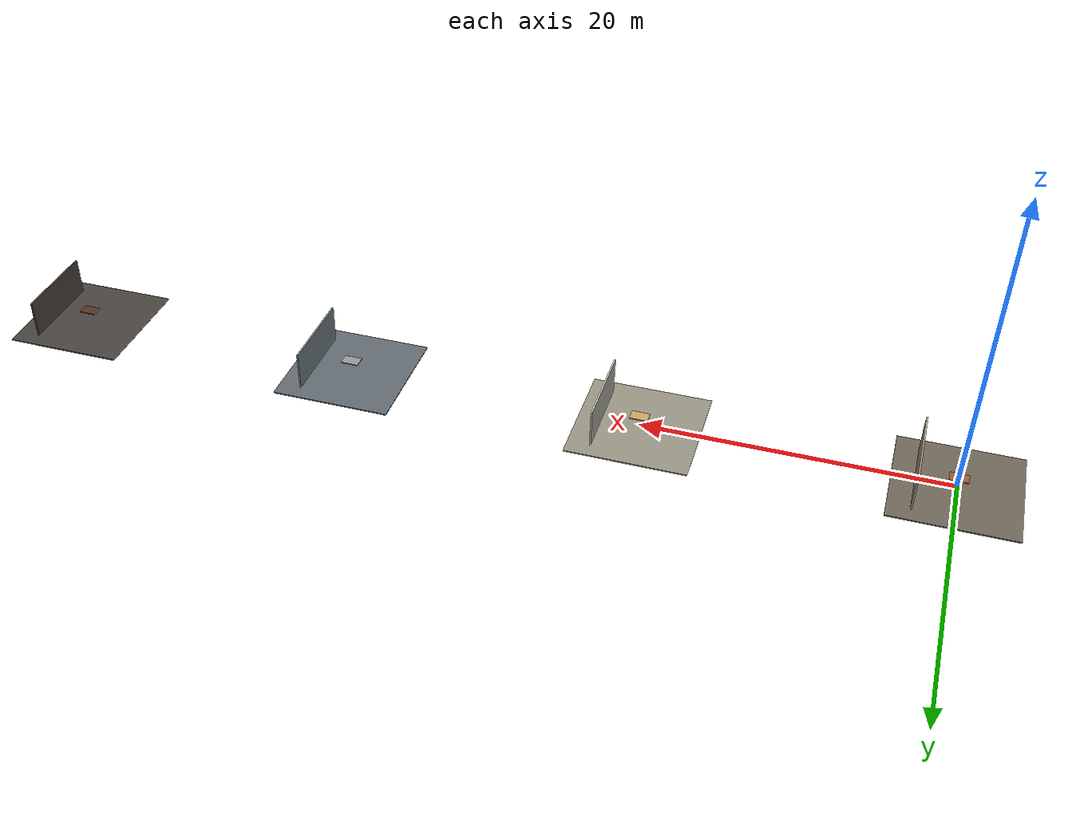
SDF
<sdf version="1.8">
 <world name="formal_objects_dataset_v2">
  <plugin filename="ignition-gazebo-physics-system" name="ignition::gazebo::systems::Physics"/>
  <plugin filename="ignition-gazebo-user-commands-system" name="ignition::gazebo::systems::UserCommands"/>
  <plugin filename="ignition-gazebo-scene-broadcaster-system" name="ignition::gazebo::systems::SceneBroadcaster"/>
  <plugin filename="ignition-gazebo-sensors-system" name="ignition::gazebo::systems::Sensors">
   <render_engine>ogre2</render_engine>
  </plugin>
  <scene>
   <ambient>0.18 0.18 0.18 1</ambient>
   <background>0.55 0.60 0.66 1</background>
   <shadows>true</shadows>
  </scene>
  <light type="directional" name="sun">
   <pose>0 0 8 0 0 0</pose>
   <diffuse>0.9 0.9 0.9 1</diffuse>
   <specular>0.2 0.2 0.2 1</specular>
   <direction>-0.45 0.20 -0.87</direction>
   <intensity>1.0</intensity>
  </light>
  <light type="directional" name="ambient_fill">
   <pose>0 0 8 0 0 0</pose>
   <diffuse>0.7 0.75 0.8 1</diffuse>
   <specular>0.05 0.05 0.05 1</specular>
   <direction>0.25 -0.15 -0.96</direction>
   <intensity>0.18</intensity>
   <cast_shadows>false</cast_shadows>
  </light>
  <model name="background_warm_wood">
   <static>true</static>
   <link name="floor">
    <pose>0 0 -0.04 0 0 0</pose>
    <visual name="visual">
     <geometry><box><size>8 8 0.08</size></box></geometry>
     <material><ambient>0.31 0.29 0.25 1</ambient><diffuse>0.42 0.39 0.34 1</diffuse></material>
    </visual>
   </link>
   <link name="table">
    <pose>0 0 0.72 0 0 0</pose>
    <visual name="visual">
     <geometry><box><size>1.2 0.8 0.06</size></box></geometry>
     <material><ambient>0.40 0.23 0.11 1</ambient><diffuse>0.58 0.35 0.18 1</diffuse></material>
    </visual>
   </link>
   <link name="wall">
    <pose>2.5 0 1.3 0 0 0</pose>
    <visual name="visual">
     <geometry><box><size>0.10 6 2.6</size></box></geometry>
     <material><ambient>0.55 0.49 0.41 1</ambient><diffuse>0.68 0.61 0.52 1</diffuse></material>
    </visual>
   </link>
  </model>
  <model name="background_light_wood">
   <pose>20 0 0 0 0 0</pose>
   <static>true</static>
   <link name="floor">
    <pose>0 0 -0.04 0 0 0</pose>
    <visual name="visual">
     <geometry><box><size>8 8 0.08</size></box></geometry>
     <material><ambient>0.43 0.42 0.38 1</ambient><diffuse>0.58 0.56 0.50 1</diffuse></material>
    </visual>
   </link>
   <link name="table">
    <pose>0 0 0.72 0 0 0</pose>
    <visual name="visual">
     <geometry><box><size>1.2 0.8 0.06</size></box></geometry>
     <material><ambient>0.62 0.48 0.29 1</ambient><diffuse>0.78 0.62 0.39 1</diffuse></material>
    </visual>
   </link>
   <link name="wall">
    <pose>2.5 0 1.3 0 0 0</pose>
    <visual name="visual">
     <geometry><box><size>0.10 6 2.6</size></box></geometry>
     <material><ambient>0.69 0.69 0.64 1</ambient><diffuse>0.82 0.82 0.76 1</diffuse></material>
    </visual>
   </link>
  </model>
  <model name="background_neutral_gray">
   <pose>40 0 0 0 0 0</pose>
   <static>true</static>
   <link name="floor">
    <pose>0 0 -0.04 0 0 0</pose>
    <visual name="visual">
     <geometry><box><size>8 8 0.08</size></box></geometry>
     <material><ambient>0.26 0.29 0.31 1</ambient><diffuse>0.37 0.40 0.43 1</diffuse></material>
    </visual>
   </link>
   <link name="table">
    <pose>0 0 0.72 0 0 0</pose>
    <visual name="visual">
     <geometry><box><size>1.2 0.8 0.06</size></box></geometry>
     <material><ambient>0.42 0.44 0.45 1</ambient><diffuse>0.56 0.58 0.59 1</diffuse></material>
    </visual>
   </link>
   <link name="wall">
    <pose>2.5 0 1.3 0 0 0</pose>
    <visual name="visual">
     <geometry><box><size>0.10 6 2.6</size></box></geometry>
     <material><ambient>0.43 0.49 0.53 1</ambient><diffuse>0.56 0.62 0.66 1</diffuse></material>
    </visual>
   </link>
  </model>
  <model name="background_dark_wood">
   <pose>60 0 0 0 0 0</pose>
   <static>true</static>
   <link name="floor">
    <pose>0 0 -0.04 0 0 0</pose>
    <visual name="visual">
     <geometry><box><size>8 8 0.08</size></box></geometry>
     <material><ambient>0.18 0.17 0.16 1</ambient><diffuse>0.27 0.25 0.23 1</diffuse></material>
    </visual>
   </link>
   <link name="table">
    <pose>0 0 0.72 0 0 0</pose>
    <visual name="visual">
     <geometry><box><size>1.2 0.8 0.06</size></box></geometry>
     <material><ambient>0.20 0.12 0.08 1</ambient><diffuse>0.31 0.19 0.12 1</diffuse></material>
    </visual>
   </link>
   <link name="wall">
    <pose>2.5 0 1.3 0 0 0</pose>
    <visual name="visual">
     <geometry><box><size>0.10 6 2.6</size></box></geometry>
     <material><ambient>0.30 0.26 0.24 1</ambient><diffuse>0.40 0.35 0.32 1</diffuse></material>
    </visual>
   </link>
  </model>
  <model name="training_camera">
   <static>true</static>
   <pose>-1.5 0 1.05 0 0.15 0</pose>
   <link name="link">
    <sensor name="rgb" type="camera">
     <topic>/training/rgb</topic>
     <camera>
      <horizontal_fov>1.2217304764</horizontal_fov>
      <image><width>640</width><height>480</height><format>R8G8B8</format></image>
      <clip><near>0.20</near><far>10.0</far></clip>
     </camera>
     <always_on>true</always_on>
     <update_rate>15</update_rate>
     <visualize>false</visualize>
    </sensor>
    <sensor name="visible_boxes" type="boundingbox_camera">
     <topic>/training/boxes</topic>
     <camera>
      <box_type>visible_2d</box_type>
      <horizontal_fov>1.2217304764</horizontal_fov>
      <image><width>640</width><height>480</height></image>
      <clip><near>0.20</near><far>10.0</far></clip>
     </camera>
     <always_on>true</always_on>
     <update_rate>15</update_rate>
     <visualize>false</visualize>
    </sensor>
   </link>
  </model>
 </world>
</sdf>
